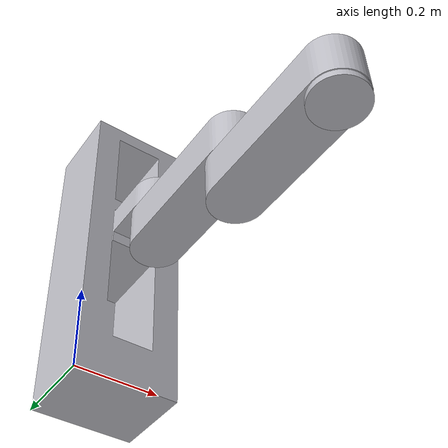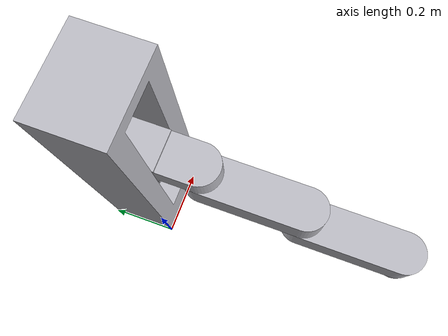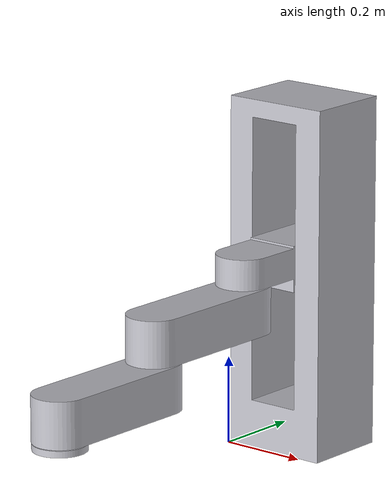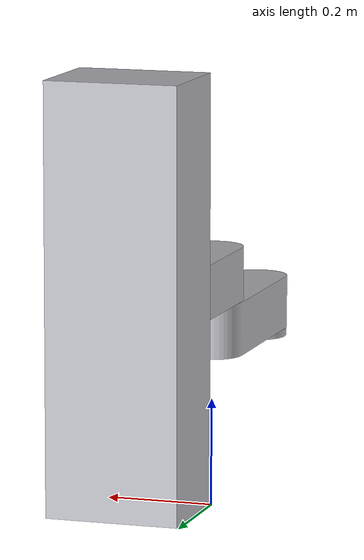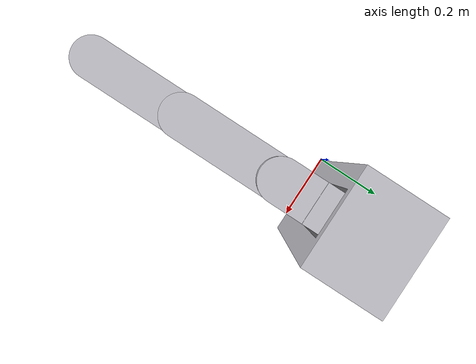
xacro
<?xml version="1.0" ?>
<robot name="scara" xmlns:xacro="http://www.ros.org/wiki/xacro">

<xacro:include filename="$(find scara_description)/urdf/materials.xacro" />
<xacro:include filename="$(find scara_description)/urdf/scara.trans" />
<xacro:include filename="$(find scara_description)/urdf/scara.gazebo" />
<link name="base_link">
  <inertial>
    <origin xyz="0.12898210621867426 0.1028129499778276 0.3800243277084152" rpy="0 0 0"/>
    <mass value="192.61152500000009"/>
    <inertia ixx="12.891145" iyy="13.714337" izz="2.144752" ixy="0.001045" iyz="-0.017315" ixz="-0.014626"/>
  </inertial>
  <visual>
    <origin xyz="0 0 0" rpy="0 0 0"/>
    <geometry>
      <mesh filename="package://scara_description/meshes/base_link.stl" scale="0.001 0.001 0.001"/>
    </geometry>
    <material name="silver"/>
  </visual>
  <collision>
    <origin xyz="0 0 0" rpy="0 0 0"/>
    <geometry>
      <mesh filename="package://scara_description/meshes/base_link.stl" scale="0.001 0.001 0.001"/>
    </geometry>
  </collision>
</link>

<link name="link1_1">
  <inertial>
    <origin xyz="-3.7976791045224445e-07 -0.15497006523662554 0.0043939352168283485" rpy="0 0 0"/>
    <mass value="29.47250695359581"/>
    <inertia ixx="0.300227" iyy="0.059546" izz="0.312927" ixy="0.0" iyz="0.01563" ixz="-0.0"/>
  </inertial>
  <visual>
    <origin xyz="-0.12554 -0.196237 -0.437082" rpy="0 0 0"/>
    <geometry>
      <mesh filename="package://scara_description/meshes/link1_1.stl" scale="0.001 0.001 0.001"/>
    </geometry>
    <material name="silver"/>
  </visual>
  <collision>
    <origin xyz="-0.12554 -0.196237 -0.437082" rpy="0 0 0"/>
    <geometry>
      <mesh filename="package://scara_description/meshes/link1_1.stl" scale="0.001 0.001 0.001"/>
    </geometry>
  </collision>
</link>

<link name="link2_1">
  <inertial>
    <origin xyz="-3.7976791031346657e-07 -0.1456549328627304 -0.07795021786375345" rpy="0 0 0"/>
    <mass value="39.847312972303484"/>
    <inertia ixx="0.565311" iyy="0.084594" izz="0.573499" ixy="-0.0" iyz="-0.002335" ixz="0.0"/>
  </inertial>
  <visual>
    <origin xyz="-0.12554 0.103763 -0.439582" rpy="0 0 0"/>
    <geometry>
      <mesh filename="package://scara_description/meshes/link2_1.stl" scale="0.001 0.001 0.001"/>
    </geometry>
    <material name="silver"/>
  </visual>
  <collision>
    <origin xyz="-0.12554 0.103763 -0.439582" rpy="0 0 0"/>
    <geometry>
      <mesh filename="package://scara_description/meshes/link2_1.stl" scale="0.001 0.001 0.001"/>
    </geometry>
  </collision>
</link>

<link name="link3_1">
  <inertial>
    <origin xyz="-3.7976790909222125e-07 -0.14565493286273024 -0.07795021786375406" rpy="0 0 0"/>
    <mass value="39.84731297230351"/>
    <inertia ixx="0.565311" iyy="0.084594" izz="0.573499" ixy="0.0" iyz="-0.002335" ixz="0.0"/>
  </inertial>
  <visual>
    <origin xyz="-0.12554 0.403763 -0.332582" rpy="0 0 0"/>
    <geometry>
      <mesh filename="package://scara_description/meshes/link3_1.stl" scale="0.001 0.001 0.001"/>
    </geometry>
    <material name="silver"/>
  </visual>
  <collision>
    <origin xyz="-0.12554 0.403763 -0.332582" rpy="0 0 0"/>
    <geometry>
      <mesh filename="package://scara_description/meshes/link3_1.stl" scale="0.001 0.001 0.001"/>
    </geometry>
  </collision>
</link>

<link name="tool0_1">
  <inertial>
    <origin xyz="-3.797679083705763e-07 3.89078758655792e-07 -0.027982578325312507" rpy="0 0 0"/>
    <mass value="1.9309956324922333"/>
    <inertia ixx="0.001577" iyy="0.001577" izz="0.002667" ixy="0.0" iyz="0.0" ixz="0.0"/>
  </inertial>
  <visual>
    <origin xyz="-0.12554 0.703763 -0.225582" rpy="0 0 0"/>
    <geometry>
      <mesh filename="package://scara_description/meshes/tool0_1.stl" scale="0.001 0.001 0.001"/>
    </geometry>
    <material name="silver"/>
  </visual>
  <collision>
    <origin xyz="-0.12554 0.703763 -0.225582" rpy="0 0 0"/>
    <geometry>
      <mesh filename="package://scara_description/meshes/tool0_1.stl" scale="0.001 0.001 0.001"/>
    </geometry>
  </collision>
</link>

<joint name="joint1" type="prismatic">
  <origin xyz="0.12554 0.196237 0.437082" rpy="0 0 0"/>
  <parent link="base_link"/>
  <child link="link1_1"/>
  <axis xyz="0.0 -0.0 1.0"/>
  <limit upper="0.265" lower="-0.1" effort="100" velocity="100"/>
</joint>

<joint name="joint2" type="revolute">
  <origin xyz="0.0 -0.3 0.0025" rpy="0 0 0"/>
  <parent link="link1_1"/>
  <child link="link2_1"/>
  <axis xyz="0.0 0.0 -1.0"/>
  <limit upper="1.745329" lower="-1.745329" effort="100" velocity="100"/>
</joint>

<joint name="joint3" type="revolute">
  <origin xyz="0.0 -0.3 -0.107" rpy="0 0 0"/>
  <parent link="link2_1"/>
  <child link="link3_1"/>
  <axis xyz="0.0 0.0 -1.0"/>
  <limit upper="2.356194" lower="-2.356194" effort="100" velocity="100"/>
</joint>

<joint name="joint4" type="revolute">
  <origin xyz="0.0 -0.3 -0.107" rpy="0 0 0"/>
  <parent link="link3_1"/>
  <child link="tool0_1"/>
  <axis xyz="0.0 0.0 -1.0"/>
  <limit upper="2.617994" lower="-2.617994" effort="100" velocity="100"/>
</joint>

<link name="world"/>

<joint name="world_to_base_link" type="fixed">
  <parent link="world"/>
  <child link="base_link"/>
  <origin xyz="0 0 0" rpy="0 0 0"/>
</joint>

</robot>

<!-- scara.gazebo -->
<robot name="scara" xmlns:xacro="http://www.ros.org/wiki/xacro" >

<xacro:property name="body_color" value="Gazebo/Silver" />

<gazebo>
  <plugin name="control" filename="libgazebo_ros_control.so"/>
</gazebo>
<gazebo reference="base_link">
  <material>${body_color}</material>
  <mu1>0.2</mu1>
  <mu2>0.2</mu2>
  <selfCollide>true</selfCollide>
  <gravity>true</gravity>
</gazebo>

<gazebo reference="link1_1">
  <material>${body_color}</material>
  <mu1>0.2</mu1>
  <mu2>0.2</mu2>
  <selfCollide>true</selfCollide>
</gazebo>

<gazebo reference="link2_1">
  <material>${body_color}</material>
  <mu1>0.2</mu1>
  <mu2>0.2</mu2>
  <selfCollide>true</selfCollide>
</gazebo>

<gazebo reference="link3_1">
  <material>${body_color}</material>
  <mu1>0.2</mu1>
  <mu2>0.2</mu2>
  <selfCollide>true</selfCollide>
</gazebo>

<gazebo reference="tool0_1">
  <material>${body_color}</material>
  <mu1>0.2</mu1>
  <mu2>0.2</mu2>
  <selfCollide>true</selfCollide>
</gazebo>

</robot>
